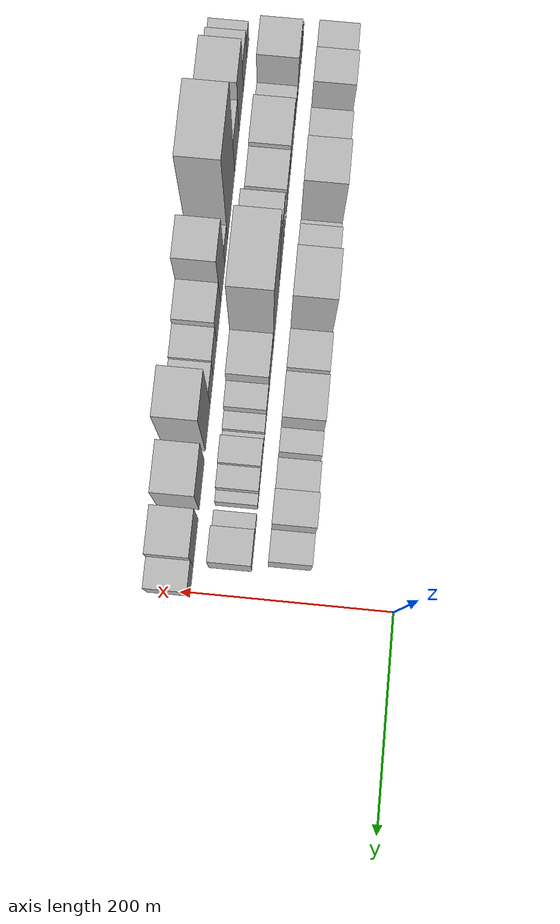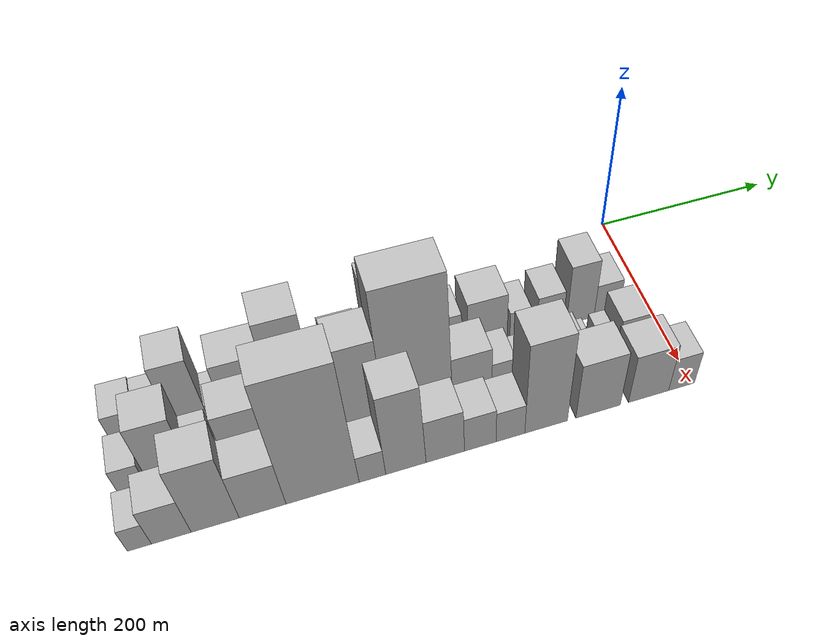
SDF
<sdf version="1.6">
 <world name="default">
  <model name="building_1">
   <static>1</static>
   <pose>100.0000 -545.5003 0 0.000000 0.000000 0.000000</pose>
   <link name="link">
    <pose>0 0 27.00 0 0 0</pose>
    <collision name="collision"><geometry><box><size>40.0000 28.9993 54.0000</size></box></geometry></collision>
    <visual name="visual">
     <cast_shadows>0</cast_shadows>
     <geometry><box><size>40.0000 28.9993 54.0000</size></box></geometry>
     <material>
      <script>
       <uri>model://HANNAS_wall/materials/scripts</uri>
       <uri>model://HANNAS_wall/materials/textures</uri>
       <name>vrc/HANNAS_wall</name>
      </script>
     </material>
    </visual>
   </link>
  </model>
  <model name="building_2">
   <static>1</static>
   <pose>100.0000 -517.2635 0 0.000000 0.000000 0.000000</pose>
   <link name="link">
    <pose>0 0 25.50 0 0 0</pose>
    <collision name="collision"><geometry><box><size>40.0000 27.4744 51.0000</size></box></geometry></collision>
    <visual name="visual">
     <cast_shadows>0</cast_shadows>
     <geometry><box><size>40.0000 27.4744 51.0000</size></box></geometry>
     <material>
      <script>
       <uri>model://HANNAS_wall/materials/scripts</uri>
       <uri>model://HANNAS_wall/materials/textures</uri>
       <name>vrc/HANNAS_wall</name>
      </script>
     </material>
    </visual>
   </link>
  </model>
  <model name="building_3">
   <static>1</static>
   <pose>100.0000 -486.2706 0 0.000000 0.000000 0.000000</pose>
   <link name="link">
    <pose>0 0 54.00 0 0 0</pose>
    <collision name="collision"><geometry><box><size>40.0000 34.5114 108.0000</size></box></geometry></collision>
    <visual name="visual">
     <cast_shadows>0</cast_shadows>
     <geometry><box><size>40.0000 34.5114 108.0000</size></box></geometry>
     <material>
      <script>
       <uri>model://HANNAS_wall/materials/scripts</uri>
       <uri>model://HANNAS_wall/materials/textures</uri>
       <name>vrc/HANNAS_wall</name>
      </script>
     </material>
    </visual>
   </link>
  </model>
  <model name="building_4">
   <static>1</static>
   <pose>100.0000 -461.0871 0 0.000000 0.000000 0.000000</pose>
   <link name="link">
    <pose>0 0 15.00 0 0 0</pose>
    <collision name="collision"><geometry><box><size>40.0000 15.8557 30.0000</size></box></geometry></collision>
    <visual name="visual">
     <cast_shadows>0</cast_shadows>
     <geometry><box><size>40.0000 15.8557 30.0000</size></box></geometry>
     <material>
      <script>
       <uri>model://HANNAS_wall/materials/scripts</uri>
       <uri>model://HANNAS_wall/materials/textures</uri>
       <name>vrc/HANNAS_wall</name>
      </script>
     </material>
    </visual>
   </link>
  </model>
  <model name="building_5">
   <static>1</static>
   <pose>100.0000 -429.2279 0 0.000000 0.000000 0.000000</pose>
   <link name="link">
    <pose>0 0 43.50 0 0 0</pose>
    <collision name="collision"><geometry><box><size>40.0000 47.8626 87.0000</size></box></geometry></collision>
    <visual name="visual">
     <cast_shadows>0</cast_shadows>
     <geometry><box><size>40.0000 47.8626 87.0000</size></box></geometry>
     <material>
      <script>
       <uri>model://HANNAS_wall/materials/scripts</uri>
       <uri>model://HANNAS_wall/materials/textures</uri>
       <name>vrc/HANNAS_wall</name>
      </script>
     </material>
    </visual>
   </link>
  </model>
  <model name="building_6">
   <static>1</static>
   <pose>100.0000 -384.0020 0 0.000000 0.000000 0.000000</pose>
   <link name="link">
    <pose>0 0 66.00 0 0 0</pose>
    <collision name="collision"><geometry><box><size>40.0000 42.5892 132.0000</size></box></geometry></collision>
    <visual name="visual">
     <cast_shadows>0</cast_shadows>
     <geometry><box><size>40.0000 42.5892 132.0000</size></box></geometry>
     <material>
      <script>
       <uri>model://HANNAS_wall/materials/scripts</uri>
       <uri>model://HANNAS_wall/materials/textures</uri>
       <name>vrc/HANNAS_wall</name>
      </script>
     </material>
    </visual>
   </link>
  </model>
  <model name="building_7">
   <static>1</static>
   <pose>100.0000 -354.1852 0 0.000000 0.000000 0.000000</pose>
   <link name="link">
    <pose>0 0 16.50 0 0 0</pose>
    <collision name="collision"><geometry><box><size>40.0000 17.0444 33.0000</size></box></geometry></collision>
    <visual name="visual">
     <cast_shadows>0</cast_shadows>
     <geometry><box><size>40.0000 17.0444 33.0000</size></box></geometry>
     <material>
      <script>
       <uri>model://HANNAS_wall/materials/scripts</uri>
       <uri>model://HANNAS_wall/materials/textures</uri>
       <name>vrc/HANNAS_wall</name>
      </script>
     </material>
    </visual>
   </link>
  </model>
  <model name="building_8">
   <static>1</static>
   <pose>100.0000 -327.2966 0 0.000000 0.000000 0.000000</pose>
   <link name="link">
    <pose>0 0 34.50 0 0 0</pose>
    <collision name="collision"><geometry><box><size>40.0000 36.7328 69.0000</size></box></geometry></collision>
    <visual name="visual">
     <cast_shadows>0</cast_shadows>
     <geometry><box><size>40.0000 36.7328 69.0000</size></box></geometry>
     <material>
      <script>
       <uri>model://HANNAS_wall/materials/scripts</uri>
       <uri>model://HANNAS_wall/materials/textures</uri>
       <name>vrc/HANNAS_wall</name>
      </script>
     </material>
    </visual>
   </link>
  </model>
  <model name="building_9">
   <static>1</static>
   <pose>100.0000 -278.6413 0 0.000000 0.000000 0.000000</pose>
   <link name="link">
    <pose>0 0 67.50 0 0 0</pose>
    <collision name="collision"><geometry><box><size>40.0000 46.5779 135.0000</size></box></geometry></collision>
    <visual name="visual">
     <cast_shadows>0</cast_shadows>
     <geometry><box><size>40.0000 46.5779 135.0000</size></box></geometry>
     <material>
      <script>
       <uri>model://HANNAS_wall/materials/scripts</uri>
       <uri>model://HANNAS_wall/materials/textures</uri>
       <name>vrc/HANNAS_wall</name>
      </script>
     </material>
    </visual>
   </link>
  </model>
  <model name="building_10">
   <static>1</static>
   <pose>100.0000 -250.1862 0 0.000000 0.000000 0.000000</pose>
   <link name="link">
    <pose>0 0 12.00 0 0 0</pose>
    <collision name="collision"><geometry><box><size>40.0000 10.3321 24.0000</size></box></geometry></collision>
    <visual name="visual">
     <cast_shadows>0</cast_shadows>
     <geometry><box><size>40.0000 10.3321 24.0000</size></box></geometry>
     <material>
      <script>
       <uri>model://HANNAS_wall/materials/scripts</uri>
       <uri>model://HANNAS_wall/materials/textures</uri>
       <name>vrc/HANNAS_wall</name>
      </script>
     </material>
    </visual>
   </link>
  </model>
  <model name="building_11">
   <static>1</static>
   <pose>100.0000 -226.5578 0 0.000000 0.000000 0.000000</pose>
   <link name="link">
    <pose>0 0 33.00 0 0 0</pose>
    <collision name="collision"><geometry><box><size>40.0000 36.9247 66.0000</size></box></geometry></collision>
    <visual name="visual">
     <cast_shadows>0</cast_shadows>
     <geometry><box><size>40.0000 36.9247 66.0000</size></box></geometry>
     <material>
      <script>
       <uri>model://HANNAS_wall/materials/scripts</uri>
       <uri>model://HANNAS_wall/materials/textures</uri>
       <name>vrc/HANNAS_wall</name>
      </script>
     </material>
    </visual>
   </link>
  </model>
  <model name="building_12">
   <static>1</static>
   <pose>100.0000 -180.7119 0 0.000000 0.000000 0.000000</pose>
   <link name="link">
    <pose>0 0 39.00 0 0 0</pose>
    <collision name="collision"><geometry><box><size>40.0000 42.7672 78.0000</size></box></geometry></collision>
    <visual name="visual">
     <cast_shadows>0</cast_shadows>
     <geometry><box><size>40.0000 42.7672 78.0000</size></box></geometry>
     <material>
      <script>
       <uri>model://HANNAS_wall/materials/scripts</uri>
       <uri>model://HANNAS_wall/materials/textures</uri>
       <name>vrc/HANNAS_wall</name>
      </script>
     </material>
    </visual>
   </link>
  </model>
  <model name="building_13">
   <static>1</static>
   <pose>100.0000 -144.7670 0 0.000000 0.000000 0.000000</pose>
   <link name="link">
    <pose>0 0 22.50 0 0 0</pose>
    <collision name="collision"><geometry><box><size>40.0000 23.1226 45.0000</size></box></geometry></collision>
    <visual name="visual">
     <cast_shadows>0</cast_shadows>
     <geometry><box><size>40.0000 23.1226 45.0000</size></box></geometry>
     <material>
      <script>
       <uri>model://HANNAS_wall/materials/scripts</uri>
       <uri>model://HANNAS_wall/materials/textures</uri>
       <name>vrc/HANNAS_wall</name>
      </script>
     </material>
    </visual>
   </link>
  </model>
  <model name="building_14">
   <static>1</static>
   <pose>100.0000 -111.3306 0 0.000000 0.000000 0.000000</pose>
   <link name="link">
    <pose>0 0 28.50 0 0 0</pose>
    <collision name="collision"><geometry><box><size>40.0000 29.7501 57.0000</size></box></geometry></collision>
    <visual name="visual">
     <cast_shadows>0</cast_shadows>
     <geometry><box><size>40.0000 29.7501 57.0000</size></box></geometry>
     <material>
      <script>
       <uri>model://HANNAS_wall/materials/scripts</uri>
       <uri>model://HANNAS_wall/materials/textures</uri>
       <name>vrc/HANNAS_wall</name>
      </script>
     </material>
    </visual>
   </link>
  </model>
  <model name="building_15">
   <static>1</static>
   <pose>100.0000 -76.7098 0 0.000000 0.000000 0.000000</pose>
   <link name="link">
    <pose>0 0 46.50 0 0 0</pose>
    <collision name="collision"><geometry><box><size>40.0000 31.4915 93.0000</size></box></geometry></collision>
    <visual name="visual">
     <cast_shadows>0</cast_shadows>
     <geometry><box><size>40.0000 31.4915 93.0000</size></box></geometry>
     <material>
      <script>
       <uri>model://HANNAS_wall/materials/scripts</uri>
       <uri>model://HANNAS_wall/materials/textures</uri>
       <name>vrc/HANNAS_wall</name>
      </script>
     </material>
    </visual>
   </link>
  </model>
  <model name="building_16">
   <static>1</static>
   <pose>100.0000 -46.2156 0 0.000000 0.000000 0.000000</pose>
   <link name="link">
    <pose>0 0 25.50 0 0 0</pose>
    <collision name="collision"><geometry><box><size>40.0000 29.4970 51.0000</size></box></geometry></collision>
    <visual name="visual">
     <cast_shadows>0</cast_shadows>
     <geometry><box><size>40.0000 29.4970 51.0000</size></box></geometry>
     <material>
      <script>
       <uri>model://HANNAS_wall/materials/scripts</uri>
       <uri>model://HANNAS_wall/materials/textures</uri>
       <name>vrc/HANNAS_wall</name>
      </script>
     </material>
    </visual>
   </link>
  </model>
  <model name="building_35">
   <static>1</static>
   <pose>155.0000 -547.1190 0 0.000000 0.000000 0.000000</pose>
   <link name="link">
    <pose>0 0 24.00 0 0 0</pose>
    <collision name="collision"><geometry><box><size>40.0000 25.7619 48.0000</size></box></geometry></collision>
    <visual name="visual">
     <cast_shadows>0</cast_shadows>
     <geometry><box><size>40.0000 25.7619 48.0000</size></box></geometry>
     <material>
      <script>
       <uri>model://HANNAS_wall/materials/scripts</uri>
       <uri>model://HANNAS_wall/materials/textures</uri>
       <name>vrc/HANNAS_wall</name>
      </script>
     </material>
    </visual>
   </link>
  </model>
  <model name="building_36">
   <static>1</static>
   <pose>155.0000 -511.6188 0 0.000000 0.000000 0.000000</pose>
   <link name="link">
    <pose>0 0 52.50 0 0 0</pose>
    <collision name="collision"><geometry><box><size>40.0000 39.2385 105.0000</size></box></geometry></collision>
    <visual name="visual">
     <cast_shadows>0</cast_shadows>
     <geometry><box><size>40.0000 39.2385 105.0000</size></box></geometry>
     <material>
      <script>
       <uri>model://HANNAS_wall/materials/scripts</uri>
       <uri>model://HANNAS_wall/materials/textures</uri>
       <name>vrc/HANNAS_wall</name>
      </script>
     </material>
    </visual>
   </link>
  </model>
  <model name="building_37">
   <static>1</static>
   <pose>155.0000 -479.9072 0 0.000000 0.000000 0.000000</pose>
   <link name="link">
    <pose>0 0 24.00 0 0 0</pose>
    <collision name="collision"><geometry><box><size>40.0000 24.1847 48.0000</size></box></geometry></collision>
    <visual name="visual">
     <cast_shadows>0</cast_shadows>
     <geometry><box><size>40.0000 24.1847 48.0000</size></box></geometry>
     <material>
      <script>
       <uri>model://HANNAS_wall/materials/scripts</uri>
       <uri>model://HANNAS_wall/materials/textures</uri>
       <name>vrc/HANNAS_wall</name>
      </script>
     </material>
    </visual>
   </link>
  </model>
  <model name="building_38">
   <static>1</static>
   <pose>155.0000 -436.9973 0 0.000000 0.000000 0.000000</pose>
   <link name="link">
    <pose>0 0 43.50 0 0 0</pose>
    <collision name="collision"><geometry><box><size>40.0000 47.6350 87.0000</size></box></geometry></collision>
    <visual name="visual">
     <cast_shadows>0</cast_shadows>
     <geometry><box><size>40.0000 47.6350 87.0000</size></box></geometry>
     <material>
      <script>
       <uri>model://HANNAS_wall/materials/scripts</uri>
       <uri>model://HANNAS_wall/materials/textures</uri>
       <name>vrc/HANNAS_wall</name>
      </script>
     </material>
    </visual>
   </link>
  </model>
  <model name="building_39">
   <static>1</static>
   <pose>155.0000 -393.3762 0 0.000000 0.000000 0.000000</pose>
   <link name="link">
    <pose>0 0 39.00 0 0 0</pose>
    <collision name="collision"><geometry><box><size>40.0000 39.6071 78.0000</size></box></geometry></collision>
    <visual name="visual">
     <cast_shadows>0</cast_shadows>
     <geometry><box><size>40.0000 39.6071 78.0000</size></box></geometry>
     <material>
      <script>
       <uri>model://HANNAS_wall/materials/scripts</uri>
       <uri>model://HANNAS_wall/materials/textures</uri>
       <name>vrc/HANNAS_wall</name>
      </script>
     </material>
    </visual>
   </link>
  </model>
  <model name="building_40">
   <static>1</static>
   <pose>155.0000 -370.1084 0 0.000000 0.000000 0.000000</pose>
   <link name="link">
    <pose>0 0 7.50 0 0 0</pose>
    <collision name="collision"><geometry><box><size>40.0000 6.9285 15.0000</size></box></geometry></collision>
    <visual name="visual">
     <cast_shadows>0</cast_shadows>
     <geometry><box><size>40.0000 6.9285 15.0000</size></box></geometry>
     <material>
      <script>
       <uri>model://HANNAS_wall/materials/scripts</uri>
       <uri>model://HANNAS_wall/materials/textures</uri>
       <name>vrc/HANNAS_wall</name>
      </script>
     </material>
    </visual>
   </link>
  </model>
  <model name="building_41">
   <static>1</static>
   <pose>155.0000 -352.9498 0 0.000000 0.000000 0.000000</pose>
   <link name="link">
    <pose>0 0 13.50 0 0 0</pose>
    <collision name="collision"><geometry><box><size>40.0000 11.3888 27.0000</size></box></geometry></collision>
    <visual name="visual">
     <cast_shadows>0</cast_shadows>
     <geometry><box><size>40.0000 11.3888 27.0000</size></box></geometry>
     <material>
      <script>
       <uri>model://HANNAS_wall/materials/scripts</uri>
       <uri>model://HANNAS_wall/materials/textures</uri>
       <name>vrc/HANNAS_wall</name>
      </script>
     </material>
    </visual>
   </link>
  </model>
  <model name="building_42">
   <static>1</static>
   <pose>155.0000 -326.3891 0 0.000000 0.000000 0.000000</pose>
   <link name="link">
    <pose>0 0 69.00 0 0 0</pose>
    <collision name="collision"><geometry><box><size>40.0000 41.7327 138.0000</size></box></geometry></collision>
    <visual name="visual">
     <cast_shadows>0</cast_shadows>
     <geometry><box><size>40.0000 41.7327 138.0000</size></box></geometry>
     <material>
      <script>
       <uri>model://HANNAS_wall/materials/scripts</uri>
       <uri>model://HANNAS_wall/materials/textures</uri>
       <name>vrc/HANNAS_wall</name>
      </script>
     </material>
    </visual>
   </link>
  </model>
  <model name="building_43">
   <static>1</static>
   <pose>155.0000 -270.8567 0 0.000000 0.000000 0.000000</pose>
   <link name="link">
    <pose>0 0 103.50 0 0 0</pose>
    <collision name="collision"><geometry><box><size>40.0000 69.3320 207.0000</size></box></geometry></collision>
    <visual name="visual">
     <cast_shadows>0</cast_shadows>
     <geometry><box><size>40.0000 69.3320 207.0000</size></box></geometry>
     <material>
      <script>
       <uri>model://HANNAS_wall/materials/scripts</uri>
       <uri>model://HANNAS_wall/materials/textures</uri>
       <name>vrc/HANNAS_wall</name>
      </script>
     </material>
    </visual>
   </link>
  </model>
  <model name="building_44">
   <static>1</static>
   <pose>155.0000 -215.5085 0 0.000000 0.000000 0.000000</pose>
   <link name="link">
    <pose>0 0 37.50 0 0 0</pose>
    <collision name="collision"><geometry><box><size>40.0000 41.3644 75.0000</size></box></geometry></collision>
    <visual name="visual">
     <cast_shadows>0</cast_shadows>
     <geometry><box><size>40.0000 41.3644 75.0000</size></box></geometry>
     <material>
      <script>
       <uri>model://HANNAS_wall/materials/scripts</uri>
       <uri>model://HANNAS_wall/materials/textures</uri>
       <name>vrc/HANNAS_wall</name>
      </script>
     </material>
    </visual>
   </link>
  </model>
  <model name="building_45">
   <static>1</static>
   <pose>155.0000 -182.4405 0 0.000000 0.000000 0.000000</pose>
   <link name="link">
    <pose>0 0 24.00 0 0 0</pose>
    <collision name="collision"><geometry><box><size>40.0000 24.7716 48.0000</size></box></geometry></collision>
    <visual name="visual">
     <cast_shadows>0</cast_shadows>
     <geometry><box><size>40.0000 24.7716 48.0000</size></box></geometry>
     <material>
      <script>
       <uri>model://HANNAS_wall/materials/scripts</uri>
       <uri>model://HANNAS_wall/materials/textures</uri>
       <name>vrc/HANNAS_wall</name>
      </script>
     </material>
    </visual>
   </link>
  </model>
  <model name="building_46">
   <static>1</static>
   <pose>155.0000 -161.3457 0 0.000000 0.000000 0.000000</pose>
   <link name="link">
    <pose>0 0 15.00 0 0 0</pose>
    <collision name="collision"><geometry><box><size>40.0000 17.4179 30.0000</size></box></geometry></collision>
    <visual name="visual">
     <cast_shadows>0</cast_shadows>
     <geometry><box><size>40.0000 17.4179 30.0000</size></box></geometry>
     <material>
      <script>
       <uri>model://HANNAS_wall/materials/scripts</uri>
       <uri>model://HANNAS_wall/materials/textures</uri>
       <name>vrc/HANNAS_wall</name>
      </script>
     </material>
    </visual>
   </link>
  </model>
  <model name="building_47">
   <static>1</static>
   <pose>155.0000 -147.7770 0 0.000000 0.000000 0.000000</pose>
   <link name="link">
    <pose>0 0 10.50 0 0 0</pose>
    <collision name="collision"><geometry><box><size>40.0000 9.7196 21.0000</size></box></geometry></collision>
    <visual name="visual">
     <cast_shadows>0</cast_shadows>
     <geometry><box><size>40.0000 9.7196 21.0000</size></box></geometry>
     <material>
      <script>
       <uri>model://HANNAS_wall/materials/scripts</uri>
       <uri>model://HANNAS_wall/materials/textures</uri>
       <name>vrc/HANNAS_wall</name>
      </script>
     </material>
    </visual>
   </link>
  </model>
  <model name="building_48">
   <static>1</static>
   <pose>155.0000 -130.0757 0 0.000000 0.000000 0.000000</pose>
   <link name="link">
    <pose>0 0 25.50 0 0 0</pose>
    <collision name="collision"><geometry><box><size>40.0000 25.6830 51.0000</size></box></geometry></collision>
    <visual name="visual">
     <cast_shadows>0</cast_shadows>
     <geometry><box><size>40.0000 25.6830 51.0000</size></box></geometry>
     <material>
      <script>
       <uri>model://HANNAS_wall/materials/scripts</uri>
       <uri>model://HANNAS_wall/materials/textures</uri>
       <name>vrc/HANNAS_wall</name>
      </script>
     </material>
    </visual>
   </link>
  </model>
  <model name="building_49">
   <static>1</static>
   <pose>155.0000 -106.2866 0 0.000000 0.000000 0.000000</pose>
   <link name="link">
    <pose>0 0 21.00 0 0 0</pose>
    <collision name="collision"><geometry><box><size>40.0000 21.8952 42.0000</size></box></geometry></collision>
    <visual name="visual">
     <cast_shadows>0</cast_shadows>
     <geometry><box><size>40.0000 21.8952 42.0000</size></box></geometry>
     <material>
      <script>
       <uri>model://HANNAS_wall/materials/scripts</uri>
       <uri>model://HANNAS_wall/materials/textures</uri>
       <name>vrc/HANNAS_wall</name>
      </script>
     </material>
    </visual>
   </link>
  </model>
  <model name="building_50">
   <static>1</static>
   <pose>155.0000 -89.7472 0 0.000000 0.000000 0.000000</pose>
   <link name="link">
    <pose>0 0 13.50 0 0 0</pose>
    <collision name="collision"><geometry><box><size>40.0000 11.1837 27.0000</size></box></geometry></collision>
    <visual name="visual">
     <cast_shadows>0</cast_shadows>
     <geometry><box><size>40.0000 11.1837 27.0000</size></box></geometry>
     <material>
      <script>
       <uri>model://HANNAS_wall/materials/scripts</uri>
       <uri>model://HANNAS_wall/materials/textures</uri>
       <name>vrc/HANNAS_wall</name>
      </script>
     </material>
    </visual>
   </link>
  </model>
  <model name="building_51">
   <static>1</static>
   <pose>155.0000 -67.2524 0 0.000000 0.000000 0.000000</pose>
   <link name="link">
    <pose>0 0 15.00 0 0 0</pose>
    <collision name="collision"><geometry><box><size>40.0000 17.8058 30.0000</size></box></geometry></collision>
    <visual name="visual">
     <cast_shadows>0</cast_shadows>
     <geometry><box><size>40.0000 17.8058 30.0000</size></box></geometry>
     <material>
      <script>
       <uri>model://HANNAS_wall/materials/scripts</uri>
       <uri>model://HANNAS_wall/materials/textures</uri>
       <name>vrc/HANNAS_wall</name>
      </script>
     </material>
    </visual>
   </link>
  </model>
  <model name="building_52">
   <static>1</static>
   <pose>155.0000 -41.7853 0 0.000000 0.000000 0.000000</pose>
   <link name="link">
    <pose>0 0 30.00 0 0 0</pose>
    <collision name="collision"><geometry><box><size>40.0000 33.1284 60.0000</size></box></geometry></collision>
    <visual name="visual">
     <cast_shadows>0</cast_shadows>
     <geometry><box><size>40.0000 33.1284 60.0000</size></box></geometry>
     <material>
      <script>
       <uri>model://HANNAS_wall/materials/scripts</uri>
       <uri>model://HANNAS_wall/materials/textures</uri>
       <name>vrc/HANNAS_wall</name>
      </script>
     </material>
    </visual>
   </link>
  </model>
  <model name="building_68">
   <static>1</static>
   <pose>210.0000 -549.3509 0 0.000000 0.000000 0.000000</pose>
   <link name="link">
    <pose>0 0 19.50 0 0 0</pose>
    <collision name="collision"><geometry><box><size>40.0000 21.2982 39.0000</size></box></geometry></collision>
    <visual name="visual">
     <cast_shadows>0</cast_shadows>
     <geometry><box><size>40.0000 21.2982 39.0000</size></box></geometry>
     <material>
      <script>
       <uri>model://HANNAS_wall/materials/scripts</uri>
       <uri>model://HANNAS_wall/materials/textures</uri>
       <name>vrc/HANNAS_wall</name>
      </script>
     </material>
    </visual>
   </link>
  </model>
  <model name="building_69">
   <static>1</static>
   <pose>210.0000 -520.8496 0 0.000000 0.000000 0.000000</pose>
   <link name="link">
    <pose>0 0 30.00 0 0 0</pose>
    <collision name="collision"><geometry><box><size>40.0000 35.7044 60.0000</size></box></geometry></collision>
    <visual name="visual">
     <cast_shadows>0</cast_shadows>
     <geometry><box><size>40.0000 35.7044 60.0000</size></box></geometry>
     <material>
      <script>
       <uri>model://HANNAS_wall/materials/scripts</uri>
       <uri>model://HANNAS_wall/materials/textures</uri>
       <name>vrc/HANNAS_wall</name>
      </script>
     </material>
    </visual>
   </link>
  </model>
  <model name="building_70">
   <static>1</static>
   <pose>210.0000 -481.1012 0 0.000000 0.000000 0.000000</pose>
   <link name="link">
    <pose>0 0 55.50 0 0 0</pose>
    <collision name="collision"><geometry><box><size>40.0000 43.7924 111.0000</size></box></geometry></collision>
    <visual name="visual">
     <cast_shadows>0</cast_shadows>
     <geometry><box><size>40.0000 43.7924 111.0000</size></box></geometry>
     <material>
      <script>
       <uri>model://HANNAS_wall/materials/scripts</uri>
       <uri>model://HANNAS_wall/materials/textures</uri>
       <name>vrc/HANNAS_wall</name>
      </script>
     </material>
    </visual>
   </link>
  </model>
  <model name="building_71">
   <static>1</static>
   <pose>210.0000 -437.4223 0 0.000000 0.000000 0.000000</pose>
   <link name="link">
    <pose>0 0 37.50 0 0 0</pose>
    <collision name="collision"><geometry><box><size>40.0000 43.5653 75.0000</size></box></geometry></collision>
    <visual name="visual">
     <cast_shadows>0</cast_shadows>
     <geometry><box><size>40.0000 43.5653 75.0000</size></box></geometry>
     <material>
      <script>
       <uri>model://HANNAS_wall/materials/scripts</uri>
       <uri>model://HANNAS_wall/materials/textures</uri>
       <name>vrc/HANNAS_wall</name>
      </script>
     </material>
    </visual>
   </link>
  </model>
  <model name="building_72">
   <static>1</static>
   <pose>210.0000 -380.7167 0 0.000000 0.000000 0.000000</pose>
   <link name="link">
    <pose>0 0 100.50 0 0 0</pose>
    <collision name="collision"><geometry><box><size>40.0000 69.8461 201.0000</size></box></geometry></collision>
    <visual name="visual">
     <cast_shadows>0</cast_shadows>
     <geometry><box><size>40.0000 69.8461 201.0000</size></box></geometry>
     <material>
      <script>
       <uri>model://HANNAS_wall/materials/scripts</uri>
       <uri>model://HANNAS_wall/materials/textures</uri>
       <name>vrc/HANNAS_wall</name>
      </script>
     </material>
    </visual>
   </link>
  </model>
  <model name="building_73">
   <static>1</static>
   <pose>210.0000 -332.9124 0 0.000000 0.000000 0.000000</pose>
   <link name="link">
    <pose>0 0 22.50 0 0 0</pose>
    <collision name="collision"><geometry><box><size>40.0000 25.7624 45.0000</size></box></geometry></collision>
    <visual name="visual">
     <cast_shadows>0</cast_shadows>
     <geometry><box><size>40.0000 25.7624 45.0000</size></box></geometry>
     <material>
      <script>
       <uri>model://HANNAS_wall/materials/scripts</uri>
       <uri>model://HANNAS_wall/materials/textures</uri>
       <name>vrc/HANNAS_wall</name>
      </script>
     </material>
    </visual>
   </link>
  </model>
  <model name="building_74">
   <static>1</static>
   <pose>210.0000 -300.0925 0 0.000000 0.000000 0.000000</pose>
   <link name="link">
    <pose>0 0 66.00 0 0 0</pose>
    <collision name="collision"><geometry><box><size>40.0000 39.8774 132.0000</size></box></geometry></collision>
    <visual name="visual">
     <cast_shadows>0</cast_shadows>
     <geometry><box><size>40.0000 39.8774 132.0000</size></box></geometry>
     <material>
      <script>
       <uri>model://HANNAS_wall/materials/scripts</uri>
       <uri>model://HANNAS_wall/materials/textures</uri>
       <name>vrc/HANNAS_wall</name>
      </script>
     </material>
    </visual>
   </link>
  </model>
  <model name="building_75">
   <static>1</static>
   <pose>210.0000 -260.9025 0 0.000000 0.000000 0.000000</pose>
   <link name="link">
    <pose>0 0 36.00 0 0 0</pose>
    <collision name="collision"><geometry><box><size>40.0000 38.5024 72.0000</size></box></geometry></collision>
    <visual name="visual">
     <cast_shadows>0</cast_shadows>
     <geometry><box><size>40.0000 38.5024 72.0000</size></box></geometry>
     <material>
      <script>
       <uri>model://HANNAS_wall/materials/scripts</uri>
       <uri>model://HANNAS_wall/materials/textures</uri>
       <name>vrc/HANNAS_wall</name>
      </script>
     </material>
    </visual>
   </link>
  </model>
  <model name="building_76">
   <static>1</static>
   <pose>210.0000 -225.5621 0 0.000000 0.000000 0.000000</pose>
   <link name="link">
    <pose>0 0 28.50 0 0 0</pose>
    <collision name="collision"><geometry><box><size>40.0000 32.1783 57.0000</size></box></geometry></collision>
    <visual name="visual">
     <cast_shadows>0</cast_shadows>
     <geometry><box><size>40.0000 32.1783 57.0000</size></box></geometry>
     <material>
      <script>
       <uri>model://HANNAS_wall/materials/scripts</uri>
       <uri>model://HANNAS_wall/materials/textures</uri>
       <name>vrc/HANNAS_wall</name>
      </script>
     </material>
    </visual>
   </link>
  </model>
  <model name="building_77">
   <static>1</static>
   <pose>210.0000 -194.6621 0 0.000000 0.000000 0.000000</pose>
   <link name="link">
    <pose>0 0 25.50 0 0 0</pose>
    <collision name="collision"><geometry><box><size>40.0000 29.6218 51.0000</size></box></geometry></collision>
    <visual name="visual">
     <cast_shadows>0</cast_shadows>
     <geometry><box><size>40.0000 29.6218 51.0000</size></box></geometry>
     <material>
      <script>
       <uri>model://HANNAS_wall/materials/scripts</uri>
       <uri>model://HANNAS_wall/materials/textures</uri>
       <name>vrc/HANNAS_wall</name>
      </script>
     </material>
    </visual>
   </link>
  </model>
  <model name="building_78">
   <static>1</static>
   <pose>210.0000 -157.4905 0 0.000000 0.000000 0.000000</pose>
   <link name="link">
    <pose>0 0 73.50 0 0 0</pose>
    <collision name="collision"><geometry><box><size>40.0000 44.7213 147.0000</size></box></geometry></collision>
    <visual name="visual">
     <cast_shadows>0</cast_shadows>
     <geometry><box><size>40.0000 44.7213 147.0000</size></box></geometry>
     <material>
      <script>
       <uri>model://HANNAS_wall/materials/scripts</uri>
       <uri>model://HANNAS_wall/materials/textures</uri>
       <name>vrc/HANNAS_wall</name>
      </script>
     </material>
    </visual>
   </link>
  </model>
  <model name="building_79">
   <static>1</static>
   <pose>210.0000 -102.3423 0 0.000000 0.000000 0.000000</pose>
   <link name="link">
    <pose>0 0 45.00 0 0 0</pose>
    <collision name="collision"><geometry><box><size>40.0000 47.5751 90.0000</size></box></geometry></collision>
    <visual name="visual">
     <cast_shadows>0</cast_shadows>
     <geometry><box><size>40.0000 47.5751 90.0000</size></box></geometry>
     <material>
      <script>
       <uri>model://HANNAS_wall/materials/scripts</uri>
       <uri>model://HANNAS_wall/materials/textures</uri>
       <name>vrc/HANNAS_wall</name>
      </script>
     </material>
    </visual>
   </link>
  </model>
  <model name="building_80">
   <static>1</static>
   <pose>210.0000 -47.6082 0 0.000000 0.000000 0.000000</pose>
   <link name="link">
    <pose>0 0 39.00 0 0 0</pose>
    <collision name="collision"><geometry><box><size>40.0000 43.8933 78.0000</size></box></geometry></collision>
    <visual name="visual">
     <cast_shadows>0</cast_shadows>
     <geometry><box><size>40.0000 43.8933 78.0000</size></box></geometry>
     <material>
      <script>
       <uri>model://HANNAS_wall/materials/scripts</uri>
       <uri>model://HANNAS_wall/materials/textures</uri>
       <name>vrc/HANNAS_wall</name>
      </script>
     </material>
    </visual>
   </link>
  </model>
  <model name="building_81">
   <static>1</static>
   <pose>210.0000 -11.3009 0 0.000000 0.000000 0.000000</pose>
   <link name="link">
    <pose>0 0 27.00 0 0 0</pose>
    <collision name="collision"><geometry><box><size>40.0000 28.7213 54.0000</size></box></geometry></collision>
    <visual name="visual">
     <cast_shadows>0</cast_shadows>
     <geometry><box><size>40.0000 28.7213 54.0000</size></box></geometry>
     <material>
      <script>
       <uri>model://HANNAS_wall/materials/scripts</uri>
       <uri>model://HANNAS_wall/materials/textures</uri>
       <name>vrc/HANNAS_wall</name>
      </script>
     </material>
    </visual>
   </link>
  </model>
 </world>
</sdf>
